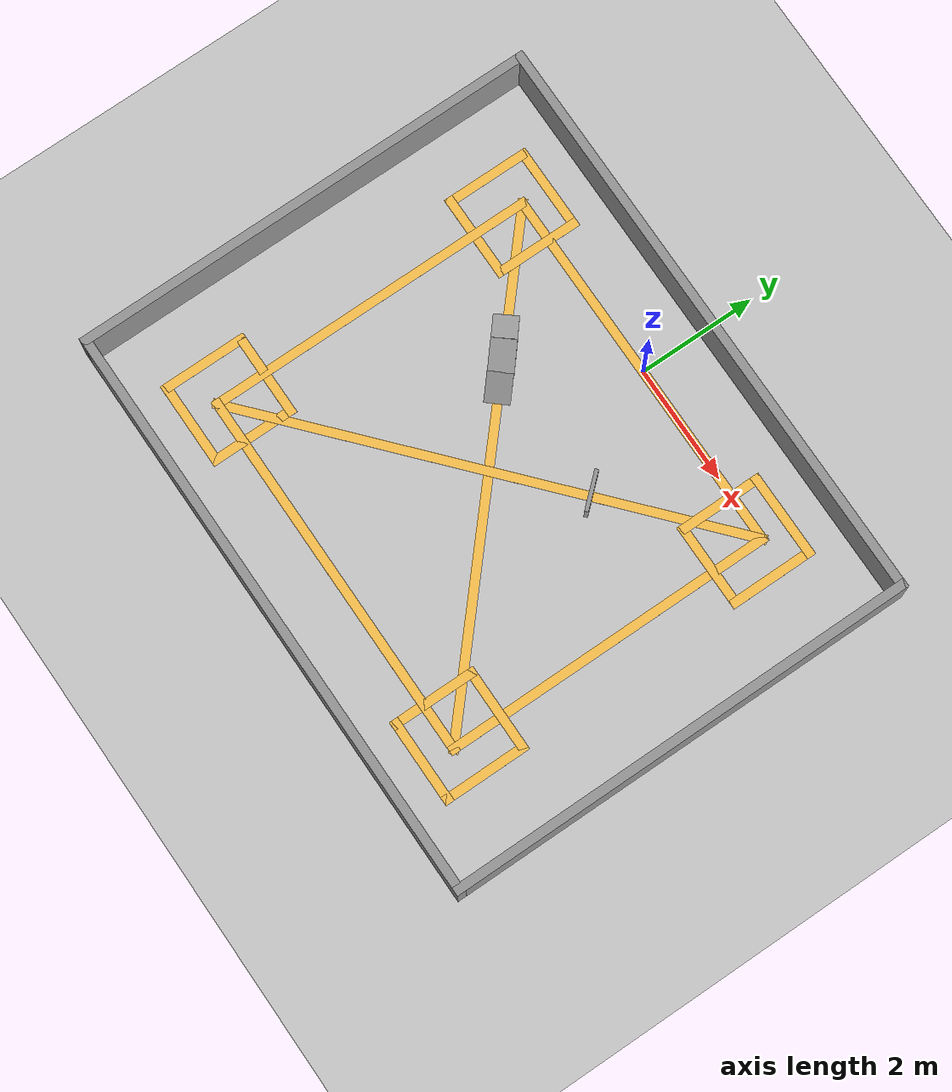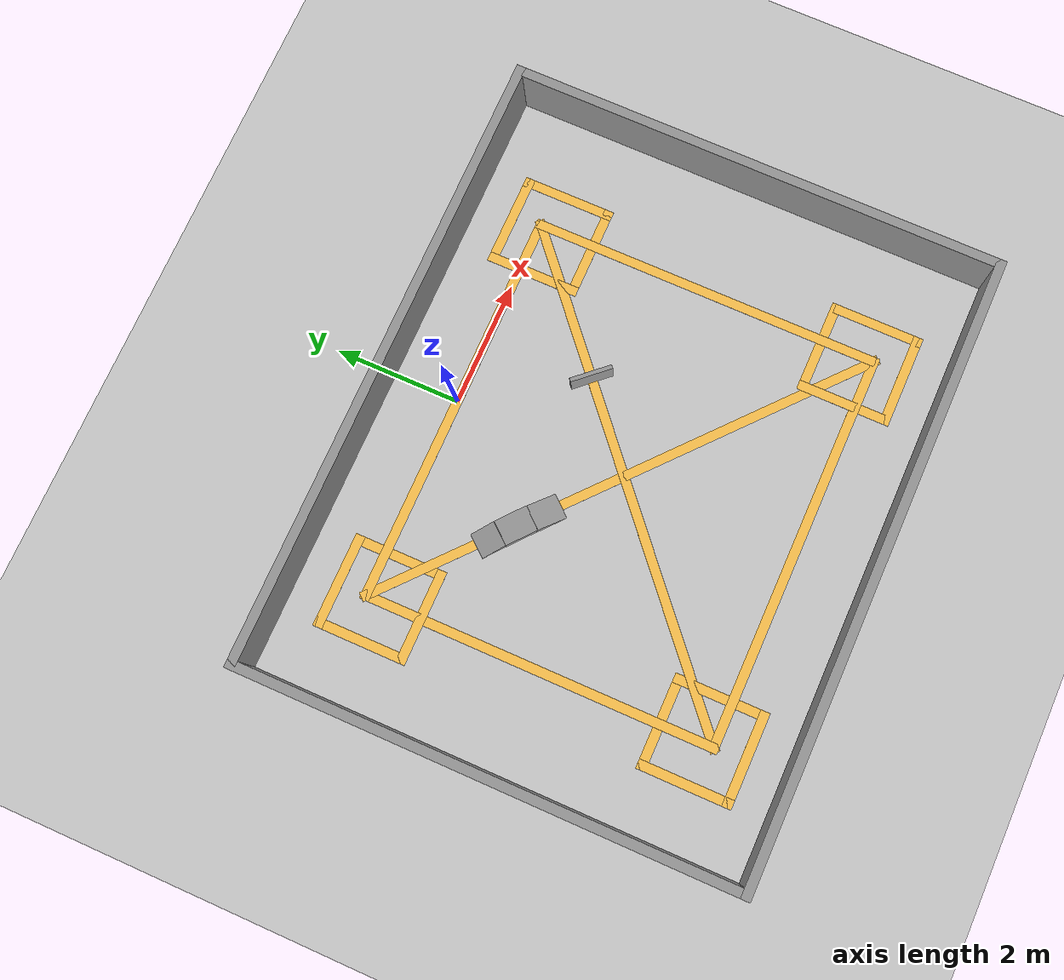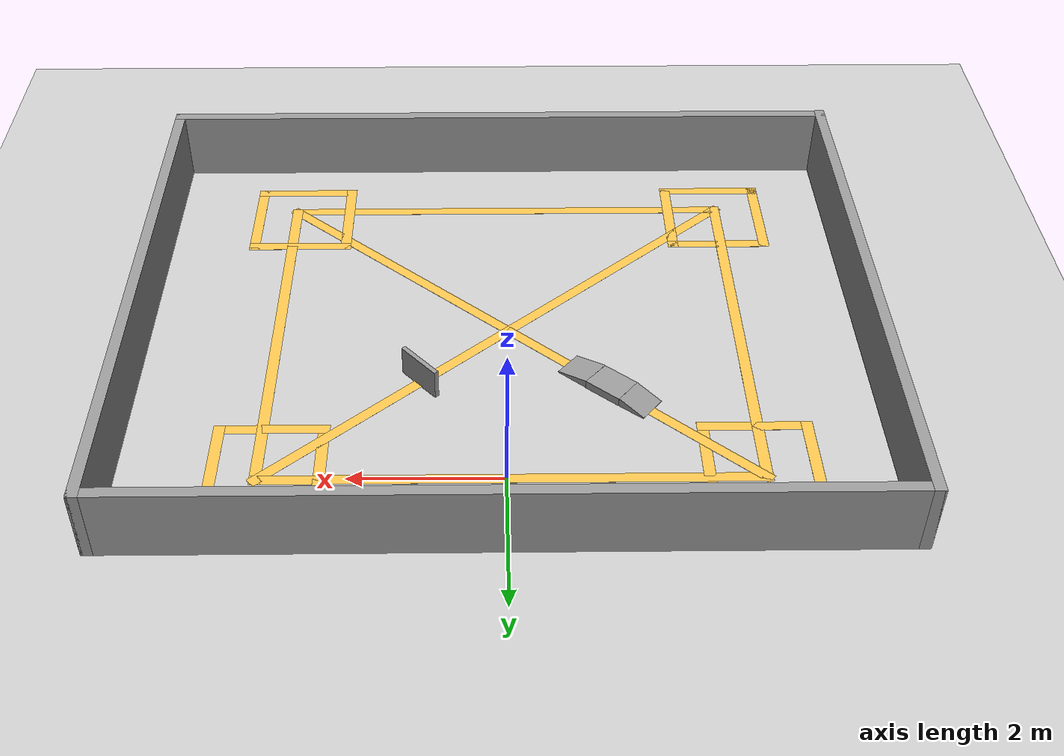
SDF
<sdf version="1.7">
 <world name="default">
  <scene><ambient>0.4 0.4 0.4 1</ambient><background>0.7 0.7 0.7 1</background><shadows>1</shadows></scene>
  <light name="sun" type="directional">
   <pose>0 0 10 0 -0 0</pose>
   <diffuse>0.8 0.8 0.8 1</diffuse>
   <specular>0.2 0.2 0.2 1</specular>
   <attenuation>
    <range>1000</range>
    <constant>0.9</constant>
    <linear>0.01</linear>
    <quadratic>0.001</quadratic>
   </attenuation>
   <direction>-0.5 0.1 -0.9</direction>
   <spot><inner_angle>0</inner_angle><outer_angle>0</outer_angle><falloff>0</falloff></spot>
  </light>
  <model name="ground_plane">
   <static>1</static>
   <link name="link">
    <collision name="collision">
     <geometry><plane><normal>0 0 1</normal><size>100 100</size></plane></geometry>
     <surface>
      <contact><collide_bitmask>65535</collide_bitmask></contact>
      <friction><ode><mu>100</mu><mu2>50</mu2></ode></friction>
     </surface>
    </collision>
    <visual name="visual">
     <cast_shadows>0</cast_shadows>
     <geometry><plane><normal>0 0 1</normal><size>100 100</size></plane></geometry>
     <material>
      <script><uri>file://media/materials/scripts/gazebo.material</uri><name>Gazebo/Grey</name></script>
     </material>
    </visual>
   </link>
  </model>
  <physics type="ode">
   <real_time_update_rate>1000</real_time_update_rate>
   <max_step_size>0.001</max_step_size>
   <real_time_factor>1</real_time_factor>
   <ode>
    <solver>
     <type>quick</type>
     <iters>150</iters>
     <precon_iters>0</precon_iters>
     <sor>1.4</sor>
     <use_dynamic_moi_rescaling>1</use_dynamic_moi_rescaling>
    </solver>
    <constraints>
     <cfm>1e-05</cfm>
     <erp>0.2</erp>
     <contact_max_correcting_vel>2000</contact_max_correcting_vel>
     <contact_surface_layer>0.01</contact_surface_layer>
    </constraints>
   </ode>
  </physics>
  <gravity>0 0 -9.8</gravity>
  <magnetic_field>6e-06 2.3e-05 -4.2e-05</magnetic_field>
  <atmosphere type="adiabatic"/>
  <spherical_coordinates>
   <surface_model>EARTH_WGS84</surface_model>
   <latitude_deg>0</latitude_deg>
   <longitude_deg>0</longitude_deg>
   <elevation>0</elevation>
   <heading_deg>0</heading_deg>
  </spherical_coordinates>
  <model name="yarisma_parkur">
   <pose>-0.0949 -2.28683 0 0 -0 0</pose>
   <link name="Wall_1">
    <collision name="Wall_1_Collision">
     <geometry><box><size>1.5 0.15 0.001</size></box></geometry>
     <pose>0 0 0.0005 0 -0 0</pose>
    </collision>
    <visual name="Wall_1_Visual">
     <pose>0 0 0.0005 0 -0 0</pose>
     <geometry><box><size>1.5 0.15 0.001</size></box></geometry>
     <material>
      <script><uri>file://media/materials/scripts/gazebo.material</uri><name>Gazebo/Grey</name></script>
      <ambient>1 0.764706 0.305882 1</ambient>
     </material>
     <meta><layer>0</layer></meta>
    </visual>
    <pose>-3.775 2.0725 0 0 -0 -1.5708</pose>
   </link>
   <link name="Wall_13">
    <collision name="Wall_13_Collision">
     <geometry><box><size>1.5 0.15 0.001</size></box></geometry>
     <pose>0 0 0.0005 0 -0 0</pose>
    </collision>
    <visual name="Wall_13_Visual">
     <pose>0 0 0.0005 0 -0 0</pose>
     <geometry><box><size>1.5 0.15 0.001</size></box></geometry>
     <material>
      <script><uri>file://media/materials/scripts/gazebo.material</uri><name>Gazebo/Grey</name></script>
      <ambient>1 0.764706 0.305882 1</ambient>
     </material>
     <meta><layer>0</layer></meta>
    </visual>
    <pose>-3.1 -2.4525 0 0 -0 0</pose>
   </link>
   <link name="Wall_14">
    <collision name="Wall_14_Collision">
     <geometry><box><size>1.5 0.15 0.001</size></box></geometry>
     <pose>0 0 0.0005 0 -0 0</pose>
    </collision>
    <visual name="Wall_14_Visual">
     <pose>0 0 0.0005 0 -0 0</pose>
     <geometry><box><size>1.5 0.15 0.001</size></box></geometry>
     <material>
      <script><uri>file://media/materials/scripts/gazebo.material</uri><name>Gazebo/Grey</name></script>
      <ambient>1 0.764706 0.305882 1</ambient>
     </material>
     <meta><layer>0</layer></meta>
    </visual>
    <pose>-2.425 -3.1275 0 0 -0 -1.5708</pose>
   </link>
   <link name="Wall_15">
    <collision name="Wall_15_Collision">
     <geometry><box><size>1.5 0.15 0.001</size></box></geometry>
     <pose>0 0 0.0005 0 -0 0</pose>
    </collision>
    <visual name="Wall_15_Visual">
     <pose>0 0 0.0005 0 -0 0</pose>
     <geometry><box><size>1.5 0.15 0.001</size></box></geometry>
     <material>
      <script><uri>file://media/materials/scripts/gazebo.material</uri><name>Gazebo/Grey</name></script>
      <ambient>1 0.764706 0.305882 1</ambient>
     </material>
     <meta><layer>0</layer></meta>
    </visual>
    <pose>-3.1 -3.8025 0 0 -0 3.14159</pose>
   </link>
   <link name="Wall_16">
    <collision name="Wall_16_Collision">
     <geometry><box><size>1.5 0.15 0.001</size></box></geometry>
     <pose>0 0 0.0005 0 -0 0</pose>
    </collision>
    <visual name="Wall_16_Visual">
     <pose>0 0 0.0005 0 -0 0</pose>
     <geometry><box><size>1.5 0.15 0.001</size></box></geometry>
     <material>
      <script><uri>file://media/materials/scripts/gazebo.material</uri><name>Gazebo/Grey</name></script>
      <ambient>1 0.764706 0.305882 1</ambient>
     </material>
     <meta><layer>0</layer></meta>
    </visual>
    <pose>-3.775 -3.1275 0 0 -0 1.5708</pose>
   </link>
   <link name="Wall_2">
    <collision name="Wall_2_Collision">
     <geometry><box><size>1.5 0.15 0.001</size></box></geometry>
     <pose>0 0 0.0005 0 -0 0</pose>
    </collision>
    <visual name="Wall_2_Visual">
     <pose>0 0 0.0005 0 -0 0</pose>
     <geometry><box><size>1.5 0.15 0.001</size></box></geometry>
     <material>
      <script><uri>file://media/materials/scripts/gazebo.material</uri><name>Gazebo/Grey</name></script>
      <ambient>1 0.764706 0.305882 1</ambient>
     </material>
     <meta><layer>0</layer></meta>
    </visual>
    <pose>-3.1 1.3975 0 0 -0 0</pose>
   </link>
   <link name="Wall_20">
    <collision name="Wall_20_Collision">
     <geometry><box><size>1.5 0.15 0.001</size></box></geometry>
     <pose>0 0 0.0005 0 -0 0</pose>
    </collision>
    <visual name="Wall_20_Visual">
     <pose>0 0 0.0005 0 -0 0</pose>
     <geometry><box><size>1.5 0.15 0.001</size></box></geometry>
     <material>
      <script><uri>file://media/materials/scripts/gazebo.material</uri><name>Gazebo/Grey</name></script>
      <ambient>1 0.764706 0.305882 1</ambient>
     </material>
     <meta><layer>0</layer></meta>
    </visual>
    <pose>2.425 -3.1275 0 0 -0 -1.5708</pose>
   </link>
   <link name="Wall_21">
    <collision name="Wall_21_Collision">
     <geometry><box><size>1.5 0.15 0.001</size></box></geometry>
     <pose>0 0 0.0005 0 -0 0</pose>
    </collision>
    <visual name="Wall_21_Visual">
     <pose>0 0 0.0005 0 -0 0</pose>
     <geometry><box><size>1.5 0.15 0.001</size></box></geometry>
     <material>
      <script><uri>file://media/materials/scripts/gazebo.material</uri><name>Gazebo/Grey</name></script>
      <ambient>1 0.764706 0.305882 1</ambient>
     </material>
     <meta><layer>0</layer></meta>
    </visual>
    <pose>3.1 -3.8025 0 0 -0 0</pose>
   </link>
   <link name="Wall_22">
    <collision name="Wall_22_Collision">
     <geometry><box><size>1.5 0.15 0.001</size></box></geometry>
     <pose>0 0 0.0005 0 -0 0</pose>
    </collision>
    <visual name="Wall_22_Visual">
     <pose>0 0 0.0005 0 -0 0</pose>
     <geometry><box><size>1.5 0.15 0.001</size></box></geometry>
     <material>
      <script><uri>file://media/materials/scripts/gazebo.material</uri><name>Gazebo/Grey</name></script>
      <ambient>1 0.764706 0.305882 1</ambient>
     </material>
     <meta><layer>0</layer></meta>
    </visual>
    <pose>3.775 -3.1275 0 0 -0 1.5708</pose>
   </link>
   <link name="Wall_23">
    <collision name="Wall_23_Collision">
     <geometry><box><size>1.5 0.15 0.001</size></box></geometry>
     <pose>0 0 0.0005 0 -0 0</pose>
    </collision>
    <visual name="Wall_23_Visual">
     <pose>0 0 0.0005 0 -0 0</pose>
     <geometry><box><size>1.5 0.15 0.001</size></box></geometry>
     <material>
      <script><uri>file://media/materials/scripts/gazebo.material</uri><name>Gazebo/Grey</name></script>
      <ambient>1 0.764706 0.305882 1</ambient>
     </material>
     <meta><layer>0</layer></meta>
    </visual>
    <pose>3.1 -2.4525 0 0 -0 3.14159</pose>
   </link>
   <link name="Wall_26">
    <collision name="Wall_26_Collision">
     <geometry><box><size>1.5 0.15 0.001</size></box></geometry>
     <pose>0 0 0.0005 0 -0 0</pose>
    </collision>
    <visual name="Wall_26_Visual">
     <pose>0 0 0.0005 0 -0 0</pose>
     <geometry><box><size>1.5 0.15 0.001</size></box></geometry>
     <material>
      <script><uri>file://media/materials/scripts/gazebo.material</uri><name>Gazebo/Grey</name></script>
      <ambient>1 0.764706 0.305882 1</ambient>
     </material>
     <meta><layer>0</layer></meta>
    </visual>
    <pose>3.1 1.3975 0 0 -0 3.14159</pose>
   </link>
   <link name="Wall_27">
    <collision name="Wall_27_Collision">
     <geometry><box><size>1.5 0.15 0.001</size></box></geometry>
     <pose>0 0 0.0005 0 -0 0</pose>
    </collision>
    <visual name="Wall_27_Visual">
     <pose>0 0 0.0005 0 -0 0</pose>
     <geometry><box><size>1.5 0.15 0.001</size></box></geometry>
     <material>
      <script><uri>file://media/materials/scripts/gazebo.material</uri><name>Gazebo/Grey</name></script>
      <ambient>1 0.764706 0.305882 1</ambient>
     </material>
     <meta><layer>0</layer></meta>
    </visual>
    <pose>2.425 2.0725 0 0 -0 1.5708</pose>
   </link>
   <link name="Wall_28">
    <collision name="Wall_28_Collision">
     <geometry><box><size>1.5 0.15 0.001</size></box></geometry>
     <pose>0 0 0.0005 0 -0 0</pose>
    </collision>
    <visual name="Wall_28_Visual">
     <pose>0 0 0.0005 0 -0 0</pose>
     <geometry><box><size>1.5 0.15 0.001</size></box></geometry>
     <material>
      <script><uri>file://media/materials/scripts/gazebo.material</uri><name>Gazebo/Grey</name></script>
      <ambient>1 0.764706 0.305882 1</ambient>
     </material>
     <meta><layer>0</layer></meta>
    </visual>
    <pose>3.1 2.7475 0 0 -0 0</pose>
   </link>
   <link name="Wall_29">
    <collision name="Wall_29_Collision">
     <geometry><box><size>1.5 0.15 0.001</size></box></geometry>
     <pose>0 0 0.0005 0 -0 0</pose>
    </collision>
    <visual name="Wall_29_Visual">
     <pose>0 0 0.0005 0 -0 0</pose>
     <geometry><box><size>1.5 0.15 0.001</size></box></geometry>
     <material>
      <script><uri>file://media/materials/scripts/gazebo.material</uri><name>Gazebo/Grey</name></script>
      <ambient>1 0.764706 0.305882 1</ambient>
     </material>
     <meta><layer>0</layer></meta>
    </visual>
    <pose>3.775 2.0725 0 0 -0 -1.5708</pose>
   </link>
   <link name="Wall_3">
    <collision name="Wall_3_Collision">
     <geometry><box><size>1.5 0.15 0.001</size></box></geometry>
     <pose>0 0 0.0005 0 -0 0</pose>
    </collision>
    <visual name="Wall_3_Visual">
     <pose>0 0 0.0005 0 -0 0</pose>
     <geometry><box><size>1.5 0.15 0.001</size></box></geometry>
     <material>
      <script><uri>file://media/materials/scripts/gazebo.material</uri><name>Gazebo/Grey</name></script>
      <ambient>1 0.764706 0.305882 1</ambient>
     </material>
     <meta><layer>0</layer></meta>
    </visual>
    <pose>-2.425 2.0725 0 0 -0 1.5708</pose>
   </link>
   <link name="Wall_33">
    <collision name="Wall_33_Collision">
     <geometry><box><size>6.5 0.15 0.001</size></box></geometry>
     <pose>0 0 0.0005 0 -0 0</pose>
    </collision>
    <visual name="Wall_33_Visual">
     <pose>0 0 0.0005 0 -0 0</pose>
     <geometry><box><size>6.5 0.15 0.001</size></box></geometry>
     <material>
      <script><uri>file://media/materials/scripts/gazebo.material</uri><name>Gazebo/Grey</name></script>
      <ambient>1 0.764706 0.305882 1</ambient>
     </material>
     <meta><layer>0</layer></meta>
    </visual>
    <pose>0.04 -3.3085 0 0 -0 0</pose>
   </link>
   <link name="Wall_34">
    <collision name="Wall_34_Collision">
     <geometry><box><size>5.75 0.15 0.001</size></box></geometry>
     <pose>0 0 0.0005 0 -0 0</pose>
    </collision>
    <visual name="Wall_34_Visual">
     <pose>0 0 0.0005 0 -0 0</pose>
     <geometry><box><size>5.75 0.15 0.001</size></box></geometry>
     <material>
      <script><uri>file://media/materials/scripts/gazebo.material</uri><name>Gazebo/Grey</name></script>
      <ambient>1 0.764706 0.305882 1</ambient>
     </material>
     <meta><layer>0</layer></meta>
    </visual>
    <pose>3.215 -0.5085 0 0 -0 1.5708</pose>
   </link>
   <link name="Wall_35">
    <collision name="Wall_35_Collision">
     <geometry><box><size>6.5 0.15 0.001</size></box></geometry>
     <pose>0 0 0.0005 0 -0 0</pose>
    </collision>
    <visual name="Wall_35_Visual">
     <pose>0 0 0.0005 0 -0 0</pose>
     <geometry><box><size>6.5 0.15 0.001</size></box></geometry>
     <material>
      <script><uri>file://media/materials/scripts/gazebo.material</uri><name>Gazebo/Grey</name></script>
      <ambient>1 0.764706 0.305882 1</ambient>
     </material>
     <meta><layer>0</layer></meta>
    </visual>
    <pose>0.04 2.2915 0 0 -0 3.14159</pose>
   </link>
   <link name="Wall_37">
    <collision name="Wall_37_Collision">
     <geometry><box><size>5.75 0.15 0.001</size></box></geometry>
     <pose>0 0 0.0005 0 -0 0</pose>
    </collision>
    <visual name="Wall_37_Visual">
     <pose>0 0 0.0005 0 -0 0</pose>
     <geometry><box><size>5.75 0.15 0.001</size></box></geometry>
     <material>
      <script><uri>file://media/materials/scripts/gazebo.material</uri><name>Gazebo/Grey</name></script>
      <ambient>1 0.764706 0.305882 1</ambient>
     </material>
     <meta><layer>0</layer></meta>
    </visual>
    <pose>-3.135 -0.5085 0 0 -0 -1.5708</pose>
   </link>
   <link name="Wall_39">
    <collision name="Wall_39_Collision">
     <geometry><box><size>8.61655 0.15 0.001</size></box></geometry>
     <pose>0 0 0.0005 0 -0 0</pose>
    </collision>
    <visual name="Wall_39_Visual">
     <pose>0 0 0.0005 0 -0 0</pose>
     <geometry><box><size>8.61655 0.15 0.001</size></box></geometry>
     <material>
      <script><uri>file://media/materials/scripts/gazebo.material</uri><name>Gazebo/Grey</name></script>
      <ambient>1 0.764706 0.305882 1</ambient>
     </material>
     <meta><layer>0</layer></meta>
    </visual>
    <pose>0.04 -0.5085 0 0 -0 -0.722719</pose>
   </link>
   <link name="Wall_4">
    <collision name="Wall_4_Collision">
     <geometry><box><size>1.5 0.15 0.001</size></box></geometry>
     <pose>0 0 0.0005 0 -0 0</pose>
    </collision>
    <visual name="Wall_4_Visual">
     <pose>0 0 0.0005 0 -0 0</pose>
     <geometry><box><size>1.5 0.15 0.001</size></box></geometry>
     <material>
      <script><uri>file://media/materials/scripts/gazebo.material</uri><name>Gazebo/Grey</name></script>
      <ambient>1 0.764706 0.305882 1</ambient>
     </material>
     <meta><layer>0</layer></meta>
    </visual>
    <pose>-3.1 2.7475 0 0 -0 3.14159</pose>
   </link>
   <link name="Wall_41">
    <collision name="Wall_41_Collision">
     <geometry><box><size>8.61655 0.15 0.001</size></box></geometry>
     <pose>0 0 0.0005 0 -0 0</pose>
    </collision>
    <visual name="Wall_41_Visual">
     <pose>0 0 0.0005 0 -0 0</pose>
     <geometry><box><size>8.61655 0.15 0.001</size></box></geometry>
     <material>
      <script><uri>file://media/materials/scripts/gazebo.material</uri><name>Gazebo/Grey</name></script>
      <ambient>1 0.764706 0.305882 1</ambient>
     </material>
     <meta><layer>0</layer></meta>
    </visual>
    <pose>0.04 -0.5085 0 0 -0 -2.41887</pose>
   </link>
   <static>1</static>
  </model>
  <model name="10x8_duvar">
   <pose>0.016286 -2.80925 0 0 -0 0</pose>
   <link name="Wall_25">
    <collision name="Wall_25_Collision">
     <geometry><box><size>10 0.15 1</size></box></geometry>
     <pose>0 0 0.5 0 -0 0</pose>
    </collision>
    <visual name="Wall_25_Visual">
     <pose>0 0 0.5 0 -0 0</pose>
     <geometry><box><size>10 0.15 1</size></box></geometry>
     <material>
      <script><uri>file://media/materials/scripts/gazebo.material</uri><name>Gazebo/Grey</name></script>
      <ambient>1 1 1 1</ambient>
     </material>
     <meta><layer>0</layer></meta>
    </visual>
    <pose>-0 3.925 0 0 -0 0</pose>
   </link>
   <link name="Wall_27">
    <collision name="Wall_27_Collision">
     <geometry><box><size>8 0.15 1</size></box></geometry>
     <pose>0 0 0.5 0 -0 0</pose>
    </collision>
    <visual name="Wall_27_Visual">
     <pose>0 0 0.5 0 -0 0</pose>
     <geometry><box><size>8 0.15 1</size></box></geometry>
     <material>
      <script><uri>file://media/materials/scripts/gazebo.material</uri><name>Gazebo/Grey</name></script>
      <ambient>1 1 1 1</ambient>
     </material>
     <meta><layer>0</layer></meta>
    </visual>
    <pose>4.925 -0 0 0 -0 -1.5708</pose>
   </link>
   <link name="Wall_29">
    <collision name="Wall_29_Collision">
     <geometry><box><size>10 0.15 1</size></box></geometry>
     <pose>0 0 0.5 0 -0 0</pose>
    </collision>
    <visual name="Wall_29_Visual">
     <pose>0 0 0.5 0 -0 0</pose>
     <geometry><box><size>10 0.15 1</size></box></geometry>
     <material>
      <script><uri>file://media/materials/scripts/gazebo.material</uri><name>Gazebo/Grey</name></script>
      <ambient>1 1 1 1</ambient>
     </material>
     <meta><layer>0</layer></meta>
    </visual>
    <pose>-0 -3.925 0 0 -0 3.14159</pose>
   </link>
   <link name="Wall_30">
    <collision name="Wall_30_Collision">
     <geometry><box><size>8 0.15 1</size></box></geometry>
     <pose>0 0 0.5 0 -0 0</pose>
    </collision>
    <visual name="Wall_30_Visual">
     <pose>0 0 0.5 0 -0 0</pose>
     <geometry><box><size>8 0.15 1</size></box></geometry>
     <material>
      <script><uri>file://media/materials/scripts/gazebo.material</uri><name>Gazebo/Grey</name></script>
      <ambient>1 1 1 1</ambient>
     </material>
     <meta><layer>0</layer></meta>
    </visual>
    <pose>-4.925 -0 0 0 -0 1.5708</pose>
   </link>
   <static>1</static>
  </model>
  <model name="unit_box">
   <pose>1.12294 -1.74192 0 0 0 -0.840519</pose>
   <link name="link">
    <inertial>
     <mass>1</mass>
     <inertia>
      <ixx>0.166667</ixx>
      <ixy>0</ixy>
      <ixz>0</ixz>
      <iyy>0.166667</iyy>
      <iyz>0</iyz>
      <izz>0.166667</izz>
     </inertia>
    </inertial>
    <collision name="collision">
     <geometry><box><size>0.668633 0.0635227 0.835336</size></box></geometry>
    </collision>
    <visual name="visual">
     <geometry><box><size>0.668633 0.0635227 0.835336</size></box></geometry>
     <material>
      <script><name>Gazebo/Grey</name><uri>file://media/materials/scripts/gazebo.material</uri></script>
     </material>
    </visual>
   </link>
  </model>
  <model name="unit_box_0">
   <pose>-1.03418 -1.94339 0 -0.012497 0.216082 -0.71678</pose>
   <link name="link">
    <inertial>
     <mass>1</mass>
     <inertia>
      <ixx>0.166667</ixx>
      <ixy>0</ixy>
      <ixz>0</ixz>
      <iyy>0.166667</iyy>
      <iyz>0</iyz>
      <izz>0.166667</izz>
     </inertia>
    </inertial>
    <collision name="collision"><geometry><box><size>0.485195 0.409021 0.11432</size></box></geometry></collision>
    <visual name="visual">
     <geometry><box><size>0.485195 0.409021 0.11432</size></box></geometry>
     <material>
      <script><name>Gazebo/Grey</name><uri>file://media/materials/scripts/gazebo.material</uri></script>
     </material>
    </visual>
   </link>
  </model>
  <model name="unit_box_1">
   <pose>-1.40038 -1.62368 0 0 -0 0.870194</pose>
   <link name="link">
    <inertial>
     <mass>1</mass>
     <inertia>
      <ixx>0.166667</ixx>
      <ixy>0</ixy>
      <ixz>0</ixz>
      <iyy>0.166667</iyy>
      <iyz>0</iyz>
      <izz>0.166667</izz>
     </inertia>
    </inertial>
    <collision name="collision">
     <geometry><box><size>0.412278 0.536054 0.213311</size></box></geometry>
    </collision>
    <visual name="visual">
     <geometry><box><size>0.412278 0.536054 0.213311</size></box></geometry>
     <material>
      <script><name>Gazebo/Grey</name><uri>file://media/materials/scripts/gazebo.material</uri></script>
     </material>
    </visual>
   </link>
  </model>
  <model name="unit_box_0_clone">
   <pose>-1.74844 -1.3332 0.002087 0.261526 0.00338 -2.25724</pose>
   <link name="link">
    <inertial>
     <mass>1</mass>
     <inertia>
      <ixx>0.166667</ixx>
      <ixy>0</ixy>
      <ixz>0</ixz>
      <iyy>0.166667</iyy>
      <iyz>0</iyz>
      <izz>0.166667</izz>
     </inertia>
    </inertial>
    <collision name="collision"><geometry><box><size>0.408003 0.409021 0.11432</size></box></geometry></collision>
    <visual name="visual">
     <geometry><box><size>0.408003 0.409021 0.11432</size></box></geometry>
     <material>
      <script><name>Gazebo/Grey</name><uri>file://media/materials/scripts/gazebo.material</uri></script>
     </material>
    </visual>
   </link>
  </model>
 </world>
</sdf>
